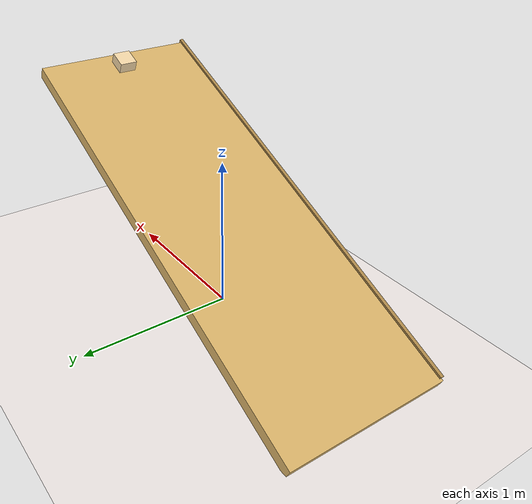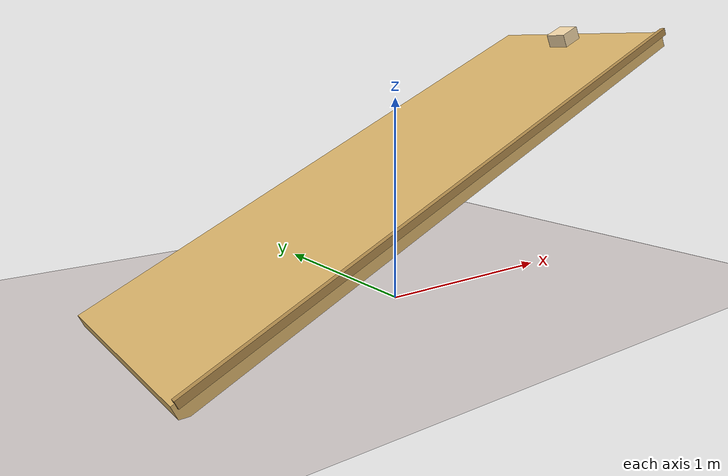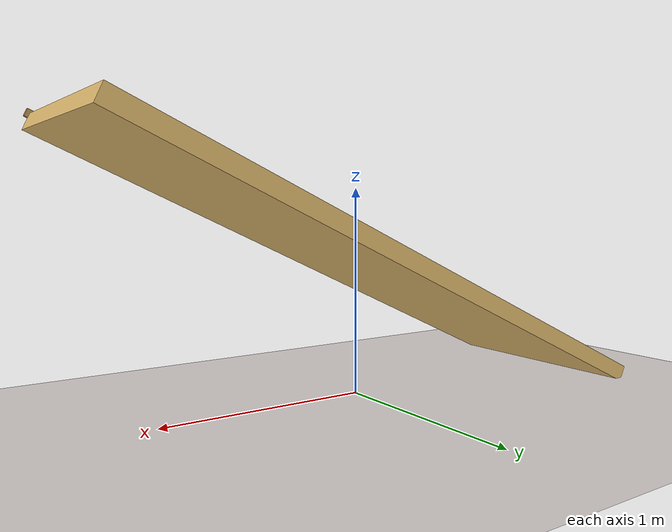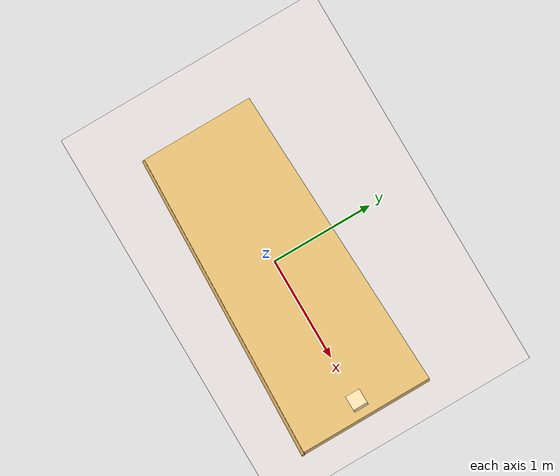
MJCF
<mujoco model="mass_on_frictionless_incline">
  <!-- Single block on a frictionless 25-degree ramp.  Acceleration a = g·sin(θ)
       along the slope, independent of mass.  Slide joint keeps motion on the
       surface without contact jitter. -->
  <compiler angle="radian" coordinate="local" autolimits="true"/>
  <option timestep="0.002" gravity="0 0 -9.81" integrator="implicitfast"
          impratio="3" cone="elliptic"/>

  <visual>
    <headlight diffuse="0 0 0" ambient="0.50 0.48 0.55" specular="0 0 0"/>
    <rgba haze="0.94 0.91 0.90 1"/>
    <global azimuth="120" elevation="-15" offwidth="1920" offheight="1080" fovy="38"/>
    <quality shadowsize="8192" offsamples="8"/>
    <map shadowclip="6" shadowscale="0.7"/>
  </visual>

  <asset>
    <texture type="skybox" builtin="flat"
             rgb1="0.74 0.68 0.86" rgb2="0.74 0.68 0.86"
             width="512" height="512" mark="none" markrgb="0 0 0"/>

    <material name="floor_mat" rgba="0.94 0.91 0.90 1" specular="0" shininess="0"/>
    <material name="ramp_mat" rgba="0.86 0.71 0.42 1" specular="0.1" shininess="0.15"/>
    <material name="ramp_dark" rgba="0.70 0.55 0.30 1" specular="0.1" shininess="0.15"/>
    <material name="block_cream" rgba="0.96 0.85 0.66 1" specular="0.2" shininess="0.25"/>
  </asset>

  <worldbody>
    <light pos="0 0 12" dir="-0.30 0.55 -1" directional="true" castshadow="true"
           diffuse="0.85 0.82 0.78" specular="0.15 0.15 0.15"/>
    <light pos="0 0 8" dir="0.40 -0.30 -1" directional="true" castshadow="false"
           diffuse="0.28 0.28 0.34" specular="0 0 0"/>

    <geom name="floor" type="plane" size="40 40 0.1" material="floor_mat"/>

    <geom name="ramp" type="box" size="1.5 0.55 0.04"
          pos="0 0 0.65" euler="0 -0.4363 0"
          material="ramp_mat" friction="0 0 0"/>
    <geom type="box" size="1.5 0.012 0.018"
          pos="0 -0.55 0.69" euler="0 -0.4363 0" material="ramp_dark"/>

    <!-- Anchor at ramp top; qpos=0 at release, qpos≈−2.68 at low end. -->
    <body name="block" pos="1.221 0 1.289" euler="0 -0.4363 0">
      <joint name="slide" type="slide" axis="1 0 0"
             range="-2.75 0" damping="0"/>
      <geom type="box" size="0.06 0.06 0.05" mass="0.3"
            material="block_cream" friction="0 0 0"/>
    </body>

    <camera name="cam" pos="0.3 -3.0 1.4" fovy="38"
            xyaxes="0.995 0.100 0   -0.030 0.295 0.955"/>
  </worldbody>
</mujoco>
